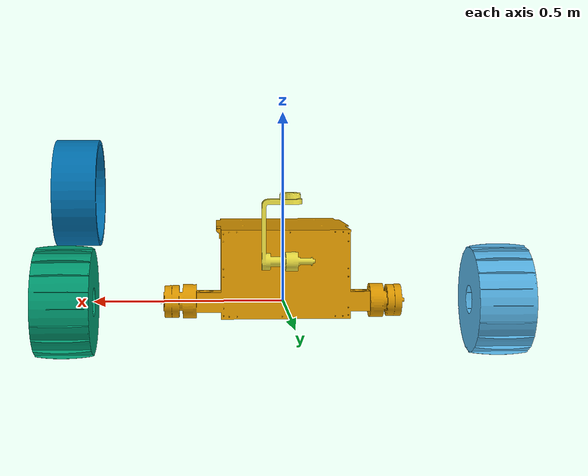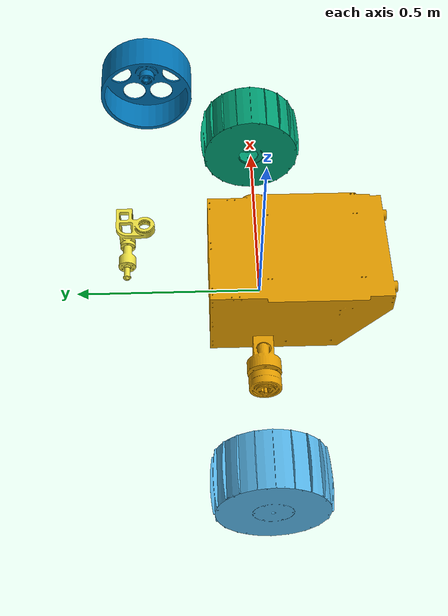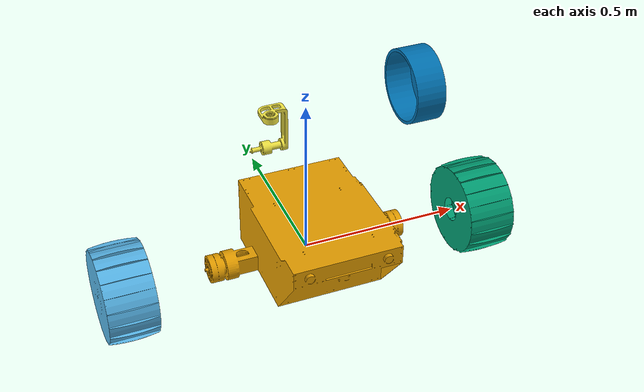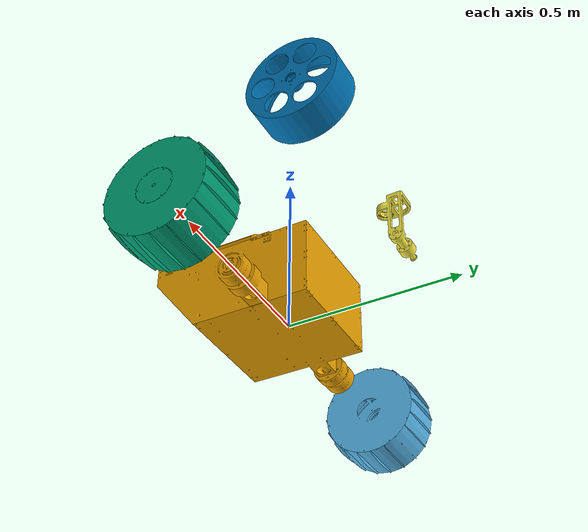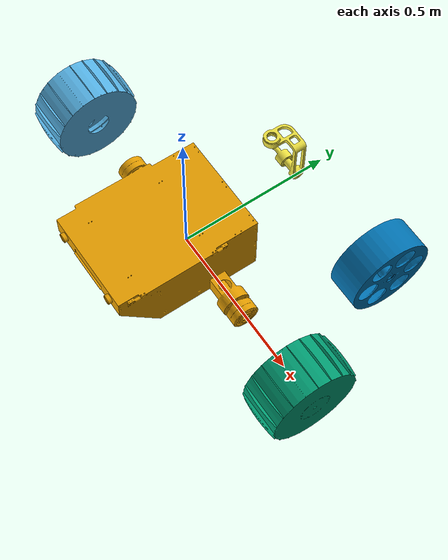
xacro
<?xml version="1.0"?>
<robot name="rover_v1" xmlns:xacro="http://www.ros.org/wiki/xacro">

  <xacro:property name="PI" value="3.1415926535897931"/>
  <xacro:property name="mesh_path" value="$(find rover_control_test_description)/meshes" />

  <link name="base_link">
   <collision>
     <origin xyz="0 0 0" rpy="0 0 0"/>
     <geometry>
       <mesh filename="file://${mesh_path}/base_link.STL"/>
     </geometry>
   </collision>
   <visual>
     <origin xyz="0 0 0" rpy="0 0 0"/>
     <geometry>
       <mesh filename="file://${mesh_path}/base_link.STL"/>
     </geometry>
   </visual>
  </link>

    <link name="front_left_wheel">
   <collision>
     <origin xyz="0 0 0" rpy="0 ${PI/2} 0"/>
     <geometry>
       <mesh filename="file://${mesh_path}/front_wheel.STL"/>
     </geometry>
   </collision>
   <visual>
     <origin xyz="0 0 0" rpy="0 ${PI/2} 0"/>
     <geometry>
       <mesh filename="file://${mesh_path}/front_wheel.STL"/>
     </geometry>
   </visual>
  </link>

  <joint name="front_left_joint" type="continuous">
    <axis xyz="1 0 0"/>
    <limit effort="100" velocity="100"/>
    <joint_properties damping="0.0" friction="0.0"/>
    <dynamics damping="0.7"/>
    <origin xyz="-0.5 0 0" rpy="0 0 0"/>
    <parent link="base_link"/>
    <child link="front_left_wheel"/>
  </joint>

  <link name="front_right_wheel">
   <collision>
     <origin xyz="0 0 0" rpy="0 -${PI/2} 0"/>
     <geometry>
       <mesh filename="file://${mesh_path}/front_wheel.STL"/>
     </geometry>
   </collision>
   <visual>
     <origin xyz="0 0 0" rpy="0 -${PI/2} 0"/>
     <geometry>
       <mesh filename="file://${mesh_path}/front_wheel.STL"/>
     </geometry>
   </visual>
  </link>

  <joint name="front_right_joint" type="continuous">
    <axis xyz="1 0 0"/>
    <limit effort="100" velocity="100"/>
    <joint_properties damping="0.0" friction="0.0"/>
    <dynamics damping="0.7"/>
    <origin xyz="0.5 0 0" rpy="0 0 0"/>
    <parent link="base_link"/>
    <child link="front_right_wheel"/>
  </joint>

  <link name="tail_link">
   <collision>
     <origin xyz="0 0 0" rpy="0 0 -${PI/2}"/>
     <geometry>
       <mesh filename="file://${mesh_path}/tail_link.STL"/>
     </geometry>
   </collision>
   <visual>
     <origin xyz="0 0 0" rpy="0 0 -${PI/2}"/>
     <geometry>
       <mesh filename="file://${mesh_path}/tail_link.STL"/>
     </geometry>
   </visual>
  </link>

  <joint name="base_to_tail" type="revolute">
    <parent link="base_link"/>
    <child link="tail_link"/>
    <axis xyz="0 0 1"/>
    <joint_properties damping="0.0" friction="0.0"/>
    <dynamics damping="0.7"/>
    <origin xyz="0 0.3 0.3"/>
    <limit lower="-1.57" upper="1.57" effort="100" velocity="100"/>
  </joint>

  <link name="rear_wheel">
   <collision>
     <origin xyz="0 0 0" rpy="0 0 ${PI}"/>
     <geometry>
       <mesh filename="file://${mesh_path}/rear_wheel.STL"/>
     </geometry>
   </collision>
   <visual>
     <origin xyz="0 0 0" rpy="0 0 ${PI}"/>
     <geometry>
       <mesh filename="file://${mesh_path}/rear_wheel.STL"/>
     </geometry>
   </visual>
  </link>

  <joint name="rear_joint" type="continuous">
    <axis xyz="1 0 0"/>
    <limit effort="100" velocity="100"/>
    <joint_properties damping="0.0" friction="0.0"/>
    <dynamics damping="0.7"/>
    <origin xyz="0.5 0 0" rpy="0 0 0"/>
    <parent link="tail_link"/>
    <child link="rear_wheel"/>
  </joint>

</robot>
